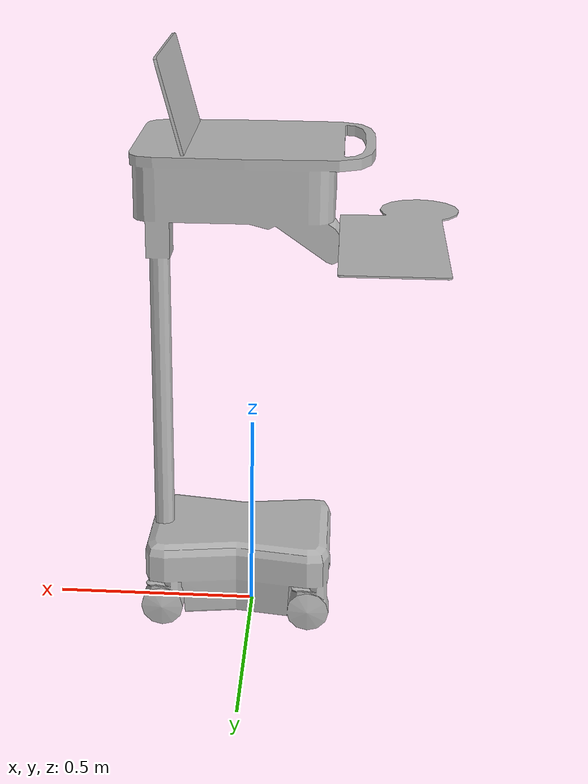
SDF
<?xml version="1.0"?>

<sdf version="1.6">
  <model name='BMWCart'>
    <link name="body">
      <pose>0 0 0 0 0 0</pose>

      <visual name="visual">
        <geometry>
          <mesh>
            <uri>model://BMWCart/meshes/Cart_BMW.obj</uri>
          </mesh>
        </geometry>
      </visual>

      <collision name="collision">
        <geometry>
          <mesh>
            <uri>model://BMWCart/meshes/Cart_BMW_Col.obj</uri>
          </mesh>
        </geometry>
      </collision>

    </link>
  </model>
</sdf>
